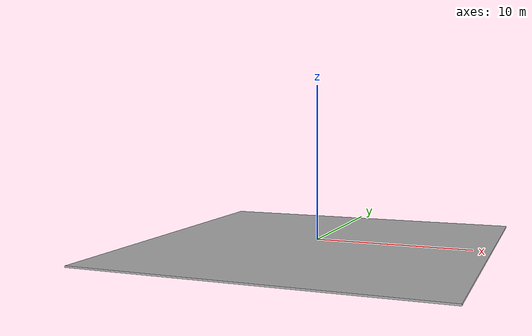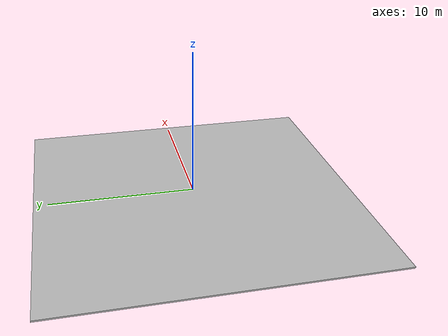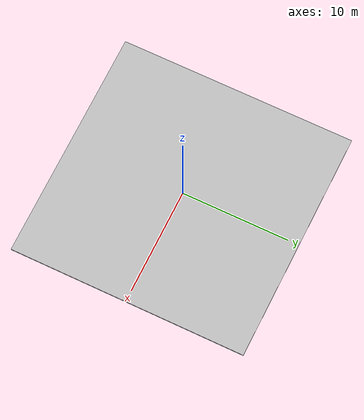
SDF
<?xml version="1.0" ?>
<sdf version="1.5">
  <model name="IARC Gym Floor">
    <pose> 0 0 -0.3 0 0 0 </pose>
    <static>true</static>
    <link name="link">
      <collision name="collision">
        <geometry>
          <box>
            <size>22 22 .1</size>
          </box>
        </geometry>
      </collision>
      <visual name="visual">
        <cast_shadows>false</cast_shadows>
        <geometry>
          <box>
            <size>22 22 .1</size>
          </box>
        </geometry>
        <material>
          <script>
            <uri>model://IARC Gym Floor/materials/scripts</uri>
            <uri>model://IARC Gym Floor/materials/textures</uri>
            <name>vrc/GymBase</name>
          </script>
        </material>
      </visual>
    </link>
  </model>
</sdf>
